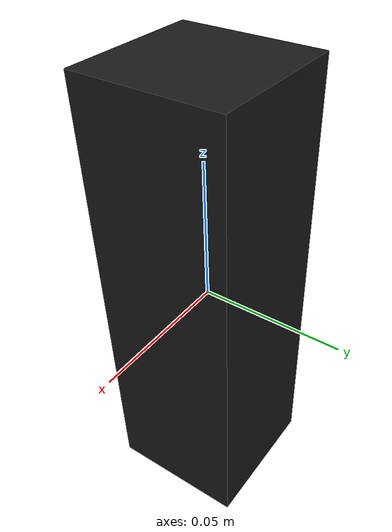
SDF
<?xml version="1.0" ?>
<sdf version="1.5">
  <model name="obstacle_1">
    <link name="base link">
      <pose>0 0 0 0 0 0</pose>
      <inertial>
        <mass>1.0</mass>
        <inertia>
          <ixx>1e-5</ixx>
          <ixy>0</ixy>
          <ixz>0</ixz>
          <iyy>1e-5</iyy>
          <iyz>0</iyz>
          <izz>1e-5</izz>
        </inertia>
      </inertial>
      <collision name="collision">
        <geometry>
          <box>
            <size>0.05 0.05 0.16</size>
          </box>
        </geometry>
        <surface>
          <friction>
            <ode>
              <mu>50.0</mu>
              <mu2>50.0</mu2>
            </ode>
          </friction>
          <contact>
          	<ode>
          		<min_depth>0.001</min_depth>
          		<max_vel>0.0</max_vel>
          	</ode>
          </contact>
        </surface>
      </collision>
      <visual name="visual">
        <geometry>
          <box>
            <size>0.05 0.05 0.16</size>
          </box>
        </geometry>
        <material>
          <ambient>0.1 0.1 0.1 1</ambient>
          <diffuse>0.1 0.1 0.1 1</diffuse>
          <specular>0 0 0 0</specular>
          <emissive>0 0 0 1</emissive>
        </material>
      </visual>
    </link>
  </model>
</sdf>
